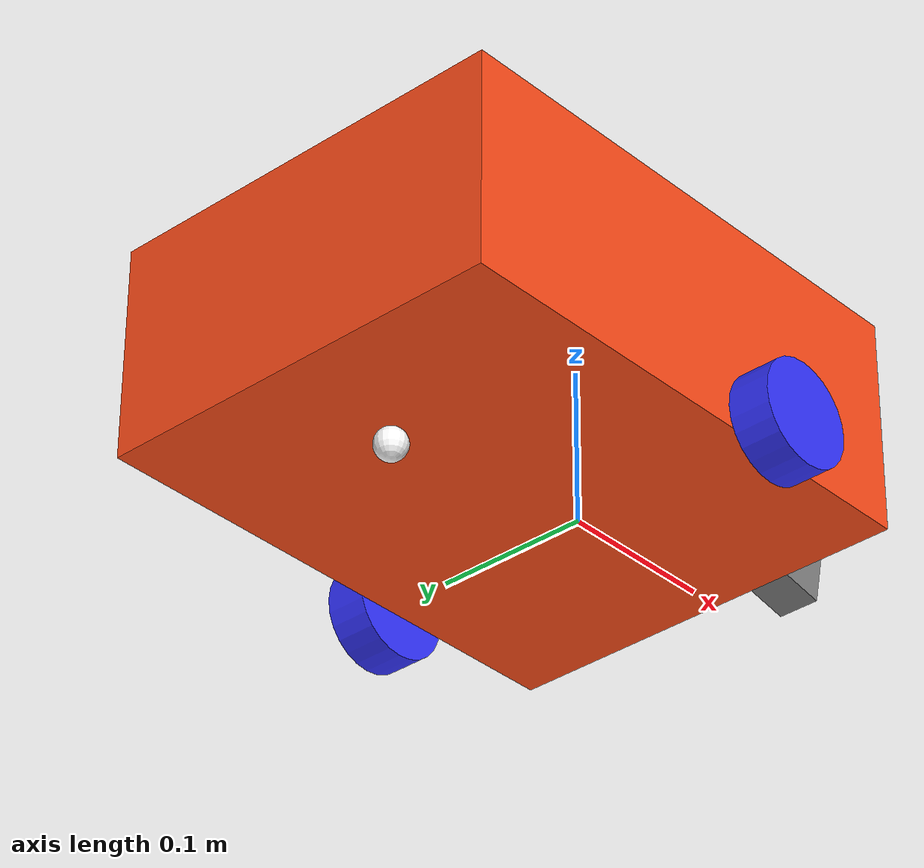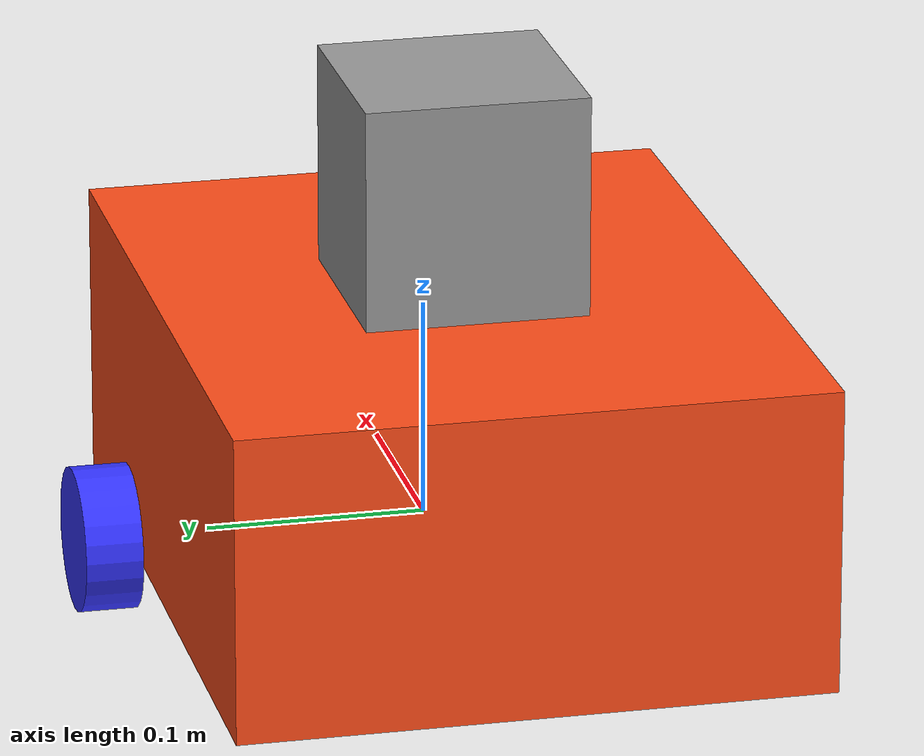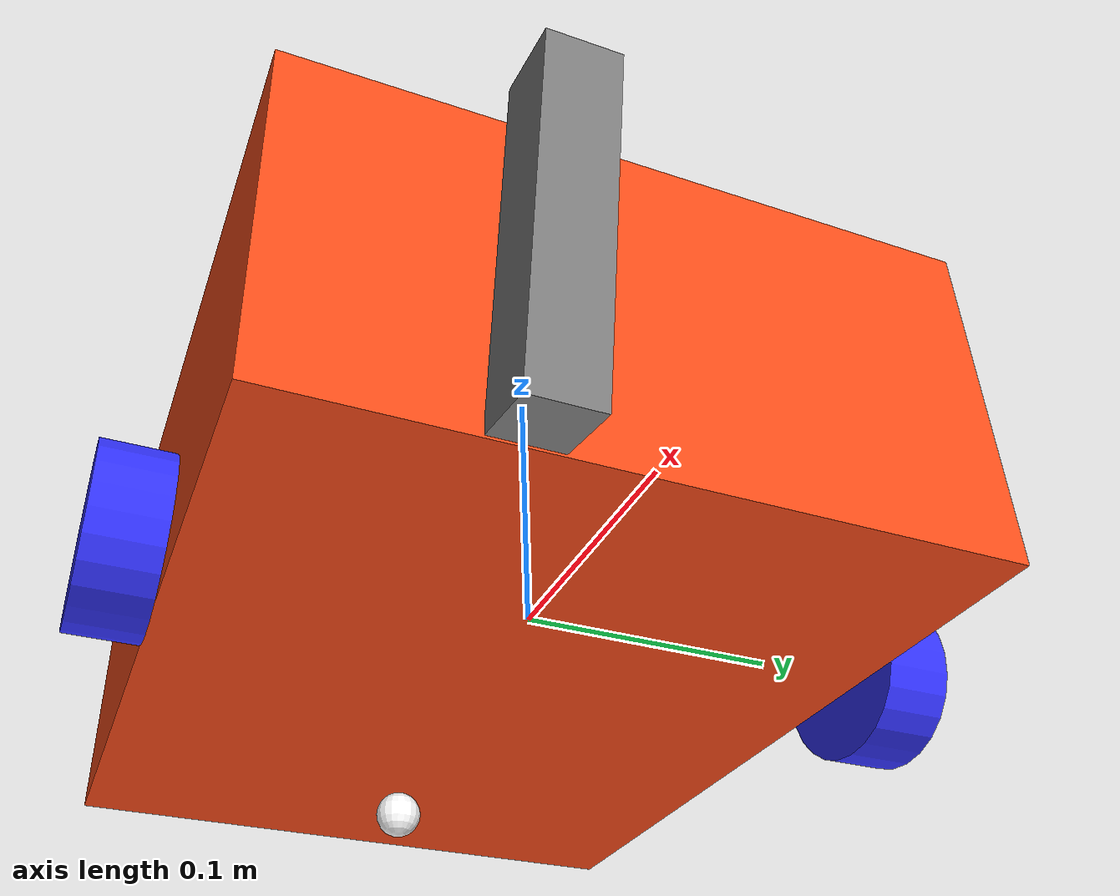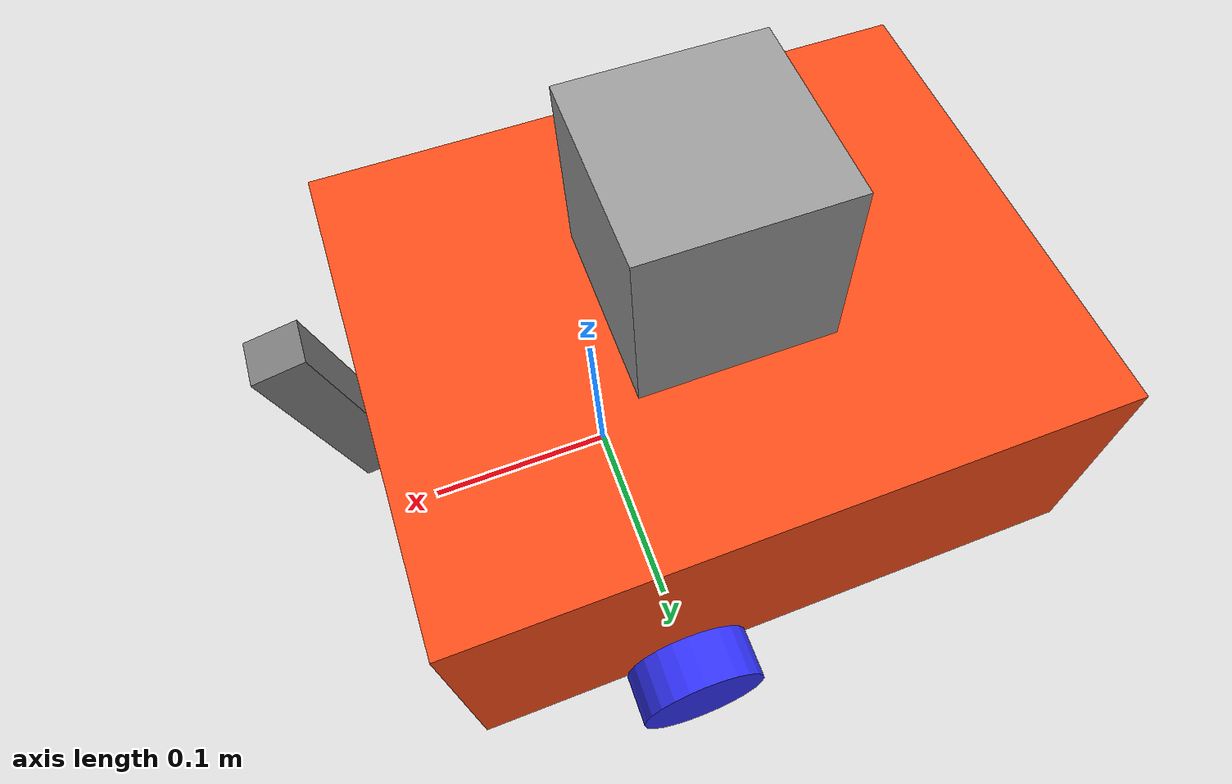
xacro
<?xml version="1.0" ?>
<robot name='robot' xmlns:xacro="http://ros.org/wiki/xacro">

    <xacro:include filename="gazebo.urdf.xacro" />
    <xacro:include filename="lidar.urdf.xacro" />
    <xacro:include filename="depth.urdf.xacro" />
    <xacro:include filename="imu.urdf.xacro" />

    <xacro:property name="chassis_length" value="0.335"/>
    <xacro:property name="chassis_width" value="0.265"/>
    <xacro:property name="chassis_height" value="0.138"/>
    <xacro:property name="wheel_radius" value="0.033"/>
    <xacro:property name="wheel_thickness" value="0.026"/>
    <xacro:property name="wheel_mass" value="0.05"/>
    <xacro:property name="wheel_offset_x" value="0.226"/>
    <xacro:property name="wheel_offset_y" value="0.1485"/>
    <xacro:property name="wheel_offset_z" value="0.01"/>
    <xacro:property name="caster_wheel_radius" value="0.01"/>
    <xacro:property name="caster_wheel_mass" value="0.01"/>
    <xacro:property name="caster_wheel_offset_x" value="0.075"/>
    <xacro:property name="caster_wheel_offset_z" value="${wheel_offset_z - wheel_radius + caster_wheel_radius}"/>

    <xacro:property name="mass" value="1.0"/>

    <material name="white">
        <color rgba="1 1 1 1" />
    </material>

    <material name="orange">
        <color rgba="1 0.3 0.1 1"/>
    </material>

    <material name="blue">
        <color rgba="0.2 0.2 1 1"/>
    </material>

    <material name="black">
        <color rgba="0 0 0 1"/>
    </material>

    <material name="red">
        <color rgba="1 0 0 1"/>
    </material>

    <link name="base_link">
    </link>

    <link name="base_footprint">
    </link>

    <joint name="base_footprint_joint" type="fixed">
        <parent link="base_link"/>
        <child link="base_footprint"/>
        <origin xyz="0 0 -0.138" rpy="0 0 0"/>
    </joint>

    <joint name="chassis_joint" type="fixed">
        <parent link="base_link"/>
        <child link="chassis"/>
        <origin xyz="${-wheel_offset_x} 0 ${-wheel_offset_z}"/>
    </joint>

    <link name='chassis'>

    <inertial>
        <origin xyz="${chassis_length/2} 0 ${chassis_height/2}" rpy="0 0 0"/>
        <mass value="${mass}" />
        <inertia ixx="${(1/12) * mass * (chassis_width*chassis_width+chassis_height*chassis_height)}" ixy="0.0" ixz="0.0"
                 iyy="${(1/12) * mass * (chassis_length*chassis_length+chassis_height*chassis_height)}" iyz="0.0"
                 izz="${(1/12) * mass * (chassis_length*chassis_length+chassis_width*chassis_width)}" />
    </inertial>
    <visual>
        <origin xyz="${chassis_length/2} 0 ${chassis_height/2}"/>
        <geometry>
            <box size="${chassis_length} ${chassis_width} ${chassis_height}"/>
        </geometry>
        <material name="orange"/>
    </visual>
    <collision>
        <origin xyz="${chassis_length/2} 0 ${chassis_height/2}"/>
        <geometry>
            <box size="${chassis_length} ${chassis_width} ${chassis_height}"/>
        </geometry>
    </collision>
    </link>

    <gazebo reference="chassis">
        <material>Gazebo/Orange</material>
    </gazebo>

    <joint name="left_wheel_joint" type="continuous">
        <parent link="base_link"/>
        <child link="left_wheel"/>
        <origin xyz="0 ${wheel_offset_y} 0" rpy="-${pi/2} 0 0" />
        <axis xyz="0 0 1"/>
    </joint>

    <link name="left_wheel">
        <visual>
            <geometry>
                <cylinder radius="${wheel_radius}" length="${wheel_thickness}"/>
            </geometry>
            <material name="blue"/>
        </visual>
        <collision>
            <geometry>
                <sphere radius="${wheel_radius}"/>
            </geometry>
        </collision>
        <inertial>
            <origin xyz="0 0 0" rpy="0 0 0"/>
            <mass value="${wheel_mass}" />
            <inertia ixx="${(1/12) * wheel_mass * (3*wheel_radius*wheel_radius + wheel_thickness*wheel_thickness)}" ixy="0.0" ixz="0.0"
                     iyy="${(1/12) * wheel_mass * (3*wheel_radius*wheel_radius + wheel_thickness*wheel_thickness)}" iyz="0.0"
                     izz="${(1/2) * wheel_mass * (wheel_radius*wheel_radius)}" />
        </inertial>
    </link>

    <gazebo reference="left_wheel">
        <material>Gazebo/Blue</material>
    </gazebo>

    <joint name="right_wheel_joint" type="continuous">
        <parent link="base_link"/>
        <child link="right_wheel"/>
        <origin xyz="0 ${-wheel_offset_y} 0" rpy="${pi/2} 0 0" />
        <axis xyz="0 0 -1"/>
    </joint>

    <link name="right_wheel">
        <visual>
            <geometry>
                <cylinder radius="${wheel_radius}" length="${wheel_thickness}"/>
            </geometry>
            <material name="blue"/>
        </visual>
        <collision>
            <geometry>
                <sphere radius="${wheel_radius}"/>
            </geometry>
        </collision>
        <inertial>
            <origin xyz="0 0 0" rpy="0 0 0"/>
            <mass value="${wheel_mass}" />
            <inertia ixx="${(1/12) * wheel_mass * (3*wheel_radius*wheel_radius + wheel_thickness*wheel_thickness)}" ixy="0.0" ixz="0.0"
                     iyy="${(1/12) * wheel_mass * (3*wheel_radius*wheel_radius + wheel_thickness*wheel_thickness)}" iyz="0.0"
                     izz="${(1/2) * wheel_mass * (wheel_radius*wheel_radius)}" />
        </inertial>
    </link>

    <gazebo reference="right_wheel">
        <material>Gazebo/Blue</material>
    </gazebo>

    <joint name="caster_wheel_joint" type="fixed">
        <parent link="chassis"/>
        <child link="caster_wheel"/>
        <origin xyz="${caster_wheel_offset_x} 0 ${caster_wheel_offset_z}"/>
    </joint>

    <link name="caster_wheel">
        <visual>
            <geometry>
                <sphere radius="${caster_wheel_radius}"/>
            </geometry>
            <material name="white"/>
        </visual>
        <collision>
            <geometry>
                <sphere radius="${caster_wheel_radius}"/>
            </geometry>
        </collision>
        <inertial>
            <origin xyz="0 0 0" rpy="0 0 0"/>
            <mass value="${caster_wheel_mass}" />
            <inertia ixx="${(2/5) * caster_wheel_mass * (caster_wheel_radius*caster_wheel_radius)}" ixy="0.0" ixz="0.0"
                     iyy="${(2/5) * caster_wheel_mass * (caster_wheel_radius*caster_wheel_radius)}" iyz="0.0"
                     izz="${(2/5) * caster_wheel_mass * (caster_wheel_radius*caster_wheel_radius)}" />
        </inertial>
    </link>

    <gazebo reference="caster_wheel">
        <material>Gazebo/White</material>
        <mu1 value="0.001"/>
        <mu2 value="0.001"/>
    </gazebo>

    <!-- Добавляем куб поверх робота -->
    <xacro:property name="cube_size" value="0.1"/>
    <xacro:property name="cube_mass" value="0.1"/>
    <xacro:property name="cube_offset_z" value="${chassis_height + cube_size/2}"/>

    <link name="cube">
        <inertial>
            <origin xyz="0 0 0" rpy="0 0 0"/>
            <mass value="${cube_mass}" />
            <inertia ixx="${(1/12) * cube_mass * (cube_size*cube_size + cube_size*cube_size)}" ixy="0.0" ixz="0.0"
                     iyy="${(1/12) * cube_mass * (cube_size*cube_size + cube_size*cube_size)}" iyz="0.0"
                     izz="${(1/12) * cube_mass * (cube_size*cube_size + cube_size*cube_size)}" />
        </inertial>
        <visual>
            <origin xyz="${chassis_length/2} 0 0" rpy="0 0 0"/>
            <geometry>
                <box size="${cube_size} ${cube_size} ${cube_size}"/>
            </geometry>
            <material name="texture">
            <texture filename="package://robot_description/urdf/kot.jpeg"/>"
            </material>
        </visual>
        <collision>
            <origin xyz="0 0 0" rpy="0 0 0"/>
            <geometry>
                <box size="${cube_size} ${cube_size} ${cube_size}"/>
            </geometry>
        </collision>
    </link>

    <joint name="cube_joint" type="fixed">
        <parent link="chassis"/>
        <child link="cube"/>
        <origin xyz="0 0 ${cube_offset_z}" rpy="0 0 0"/>
    </joint>

    <gazebo reference="cube">
    <material>Gazebo/Grey</material>
        <texture>
            <diffuse>file://minecraft.png</diffuse>
        </texture>
</gazebo>

</robot>

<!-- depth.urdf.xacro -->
<robot xmlns:xacro="http://www.ros.org/wiki/xacro">

    <xacro:property name="M_PI" value="3.1415926535897931" />

    <joint name="depth_joint" type="fixed">
        <parent link="base_link"/>
        <child link="depth_frame"/>
        <origin xyz="0.13 0 0.05" rpy="0 0.2 0"/>
    </joint>

    <material name="aluminum">
      <color rgba="0.5 0.5 0.5 1"/>
    </material>

    <link name="depth_frame">
        <visual>
            <origin xyz="0.00465 -0.0475 0" rpy="${M_PI/2} 0 ${M_PI/2}"/>
            <geometry>
                <box size="0.026 0.124 0.029"/>
            </geometry>
            <material name="aluminum"/>
        </visual>
        <collision>
            <origin xyz="0.00465 -0.0475 0" rpy="${M_PI/2} 0 ${M_PI/2}"/>
            <geometry>
                <box size="0.026 0.124 0.029"/>
            </geometry>
        </collision>
        <inertial>
            <origin xyz="0 0 0" rpy="0 0 0"/>
            <mass value="0.116" />
            <inertia ixx="${(1/12) * 0.116 * (0.026*0.026+0.029*0.029)}" ixy="0.0" ixz="0.0"
                     iyy="${(1/12) * 0.116 * (0.124*0.124+0.029*0.029)}" iyz="0.0"
                     izz="${(1/12) * 0.116 * (0.124*0.124+0.026*0.026)}" />
        </inertial>
    </link>

    <gazebo reference="depth_frame">
        <sensor name='depth_sensor_frame' type='depth_camera'>"
            <gz_frame_id>robot/depth_frame</gz_frame_id>
            <pose> 0 0 0 0 0 0 </pose>
            <always_on>true</always_on>
            <update_rate>10</update_rate>
            <camera>
                <horizontal_fov>1.51843645</horizontal_fov>
                <image>
                    <width>848</width>
                    <height>480</height>
                    <format>R_FLOAT32</format>
                </image>
                <clip>
                    <near>0.1</near>
                    <far>10</far>
                </clip>
                <lens>
                    <intrinsics>
                    <fx>421.61578369140625</fx>
                    <fy>421.61578369140625</fy>
                    <cx>422.2854309082031</cx>
                    <cy>236.57237243652344</cy>
                    <s>0</s>
                    </intrinsics>
                </lens>
                <noise>
                    <type>gaussian</type>
                    <mean>0.0</mean>
                    <stddev>0.007</stddev>
                </noise>
            </camera>
        </sensor>
        <sensor name="color_sensor_frame" type="camera">
            <gz_frame_id>robot/depth_frame</gz_frame_id>
            <pose>0 0 0 0 0 0</pose>
            <update_rate>30</update_rate>
            <always_on>true</always_on>
            <camera>
                <horizontal_fov>1.20427718</horizontal_fov>
                <image>
                    <width>848</width>
                    <height>480</height>
                </image>
                <clip>
                    <near>0.1</near>
                    <far>50</far>
                </clip>
                <lens>
                    <intrinsics>
                    <fx>615.9603271484375</fx>
                    <fy>616.227294921875</fy>
                    <cx>419.83026123046875</cx>
                    <cy>245.1431427001953</cy>
                    <s>0</s>
                    </intrinsics>
                </lens>
            </camera>
        </sensor>
    </gazebo>
</robot>
